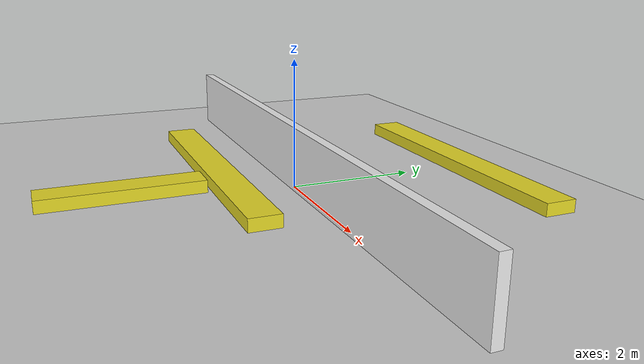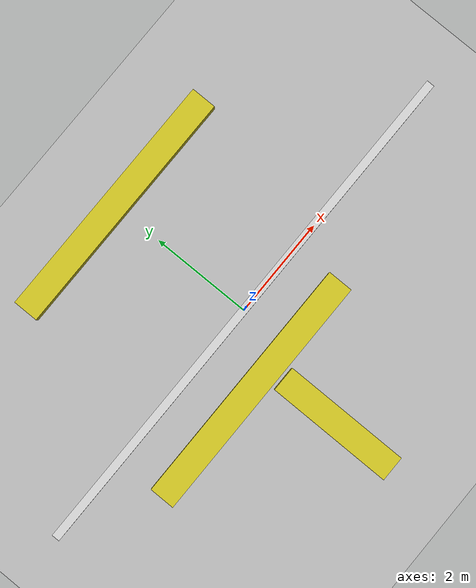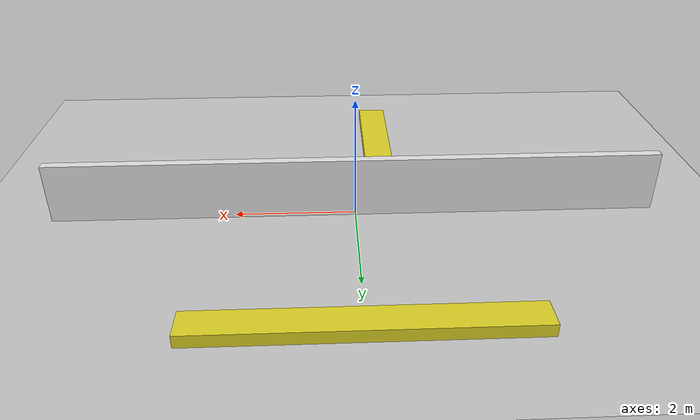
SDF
<sdf version="1.7">
 <world name="default">
  <light name="sun" type="directional">
   <pose>0 0 10 0 -0 0</pose>
   <diffuse>0.8 0.8 0.8 1</diffuse>
   <specular>0.2 0.2 0.2 1</specular>
   <attenuation>
    <range>1000</range>
    <constant>0.9</constant>
    <linear>0.01</linear>
    <quadratic>0.001</quadratic>
   </attenuation>
   <direction>-0.5 0.1 -0.9</direction>
   <spot><inner_angle>0</inner_angle><outer_angle>0</outer_angle><falloff>0</falloff></spot>
  </light>
  <model name="ground_plane">
   <static>1</static>
   <link name="link">
    <collision name="collision">
     <geometry><plane><normal>0 0 1</normal><size>100 100</size></plane></geometry>
     <surface><friction><ode><mu>100</mu><mu2>50</mu2></ode></friction></surface>
    </collision>
    <visual name="visual">
     <cast_shadows>0</cast_shadows>
     <geometry><plane><normal>0 0 1</normal><size>100 100</size></plane></geometry>
     <material>
      <script><uri>file://media/materials/scripts/gazebo.material</uri><name>Gazebo/Grey</name></script>
     </material>
    </visual>
   </link>
  </model>
  <gravity>0 0 -9.8</gravity>
  <magnetic_field>6e-06 2.3e-05 -4.2e-05</magnetic_field>
  <atmosphere type="adiabatic"/>
  <physics type="ode">
   <max_step_size>0.001</max_step_size>
   <real_time_factor>1</real_time_factor>
   <real_time_update_rate>1000</real_time_update_rate>
  </physics>
  <scene><ambient>0.4 0.4 0.4 1</ambient><background>0.7 0.7 0.7 1</background><shadows>1</shadows></scene>
  <audio><device>default</device></audio>
  <spherical_coordinates>
   <surface_model>EARTH_WGS84</surface_model>
   <latitude_deg>0</latitude_deg>
   <longitude_deg>0</longitude_deg>
   <elevation>0</elevation>
   <heading_deg>0</heading_deg>
  </spherical_coordinates>
  <model name="Arena_Wall">
   <link name="Wall_0">
    <collision name="Wall_0_Collision">
     <geometry><box><size>10 0.15 1</size></box></geometry>
     <pose>0 0 0.5 0 0 0</pose>
    </collision>
    <visual name="Wall_0_Visual">
     <pose>0 0 0.5 0 0 0</pose>
     <geometry><box><size>10 0.15 1</size></box></geometry>
     <material>
      <script><uri>file://media/materials/scripts/gazebo.material</uri><name>Gazebo/White</name></script>
      <ambient>1 1 1 1</ambient>
     </material>
     <meta><layer>0</layer></meta>
    </visual>
   </link>
   <link name="Wall_6">
    <visual name="Wall_6_Visual_0">
     <pose>0 0 0.5 0 -0 0</pose>
     <geometry><box><size>10 0.15 1</size></box></geometry>
     <material>
      <script><uri>file://media/materials/scripts/gazebo.material</uri><name>Gazebo/White</name></script>
      <ambient>1 1 1 1</ambient>
     </material>
     <meta><layer>0</layer></meta>
    </visual>
    <collision name="Wall_6_Collision_0">
     <geometry><box><size>10 0.15 1</size></box></geometry>
     <pose>0 0 0.5 0 0 0</pose>
    </collision>
   </link>
   <link name="Wall_7">
    <collision name="Wall_7_Collision">
     <geometry><box><size>10 0.15 1</size></box></geometry>
     <pose>0 0 0.5 0 0 0</pose>
    </collision>
    <visual name="Wall_7_Visual">
     <pose>0 0 0.5 0 0 0</pose>
     <geometry><box><size>10 0.15 1</size></box></geometry>
     <material>
      <script><uri>file://media/materials/scripts/gazebo.material</uri><name>Gazebo/White</name></script>
      <ambient>1 1 1 1</ambient>
     </material>
     <meta><layer>0</layer></meta>
    </visual>
   </link>
   <link name="Wall_8">
    <collision name="Wall_8_Collision">
     <geometry><box><size>10 0.15 1</size></box></geometry>
     <pose>0 0 0.5 0 0 0</pose>
    </collision>
    <visual name="Wall_8_Visual">
     <pose>0 0 0.5 0 0 0</pose>
     <geometry><box><size>10 0.15 1</size></box></geometry>
     <material>
      <script><uri>file://media/materials/scripts/gazebo.material</uri><name>Gazebo/White</name></script>
      <ambient>1 1 1 1</ambient>
     </material>
     <meta><layer>0</layer></meta>
    </visual>
   </link>
   <static>1</static>
  </model>
  <model name="kutija_1">
   <link name="link_2">
    <inertial>
     <mass>100</mass>
     <inertia><ixx>3.33333</ixx><ixy>0</ixy><ixz>0</ixz><iyy>1.66667</iyy><iyz>0</iyz><izz>4.33333</izz></inertia>
     <pose>0 0 0.1 0 -0 0</pose>
    </inertial>
    <visual name="visual">
     <geometry><box><size>2.5 0.5 0.2</size></box></geometry>
     <material>
      <lighting>1</lighting>
      <script><uri>file://media/materials/scripts/gazebo.material</uri><name>Gazebo/Yellow</name></script>
      <shader type="pixel"><normal_map>__default__</normal_map></shader>
      <ambient>1 1 0 1</ambient>
      <diffuse>1 1 0 1</diffuse>
      <specular>0.1 0.1 0 1</specular>
      <emissive>0.25 0.25 0 1</emissive>
     </material>
    </visual>
    <collision name="collision">
     <geometry><box><size>2.5 0.5 0.2</size></box></geometry>
     <surface>
      <friction>
       <ode><mu>1</mu><mu2>1</mu2><fdir1>0 0 0</fdir1><slip1>0</slip1><slip2>0</slip2></ode>
       <torsional>
        <coefficient>1</coefficient>
        <patch_radius>0</patch_radius>
        <surface_radius>0</surface_radius>
        <use_patch_radius>1</use_patch_radius>
        <ode><slip>0</slip></ode>
       </torsional>
      </friction>
      <bounce><restitution_coefficient>0</restitution_coefficient><threshold>1e+06</threshold></bounce>
      <contact>
       <collide_without_contact>0</collide_without_contact>
       <collide_without_contact_bitmask>1</collide_without_contact_bitmask>
       <collide_bitmask>1</collide_bitmask>
       <ode>
        <soft_cfm>0</soft_cfm>
        <soft_erp>0.2</soft_erp>
        <kp>1e+13</kp>
        <kd>1</kd>
        <max_vel>0.01</max_vel>
        <min_depth>0</min_depth>
       </ode>
       <bullet>
        <split_impulse>1</split_impulse>
        <split_impulse_penetration_threshold>-0.01</split_impulse_penetration_threshold>
        <soft_cfm>0</soft_cfm>
        <soft_erp>0.2</soft_erp>
        <kp>1e+13</kp>
        <kd>1</kd>
       </bullet>
      </contact>
     </surface>
    </collision>
   </link>
   <static>0</static>
   <pose>-0.5 -2.57 0.1 0 0 1.57</pose>
  </model>
  <model name="kutija_2">
   <link name="link_2">
    <inertial>
     <mass>100</mass>
     <inertia><ixx>3.33333</ixx><ixy>0</ixy><ixz>0</ixz><iyy>1.66667</iyy><iyz>0</iyz><izz>4.33333</izz></inertia>
     <pose>0 0 0.1 0 -0 0</pose>
    </inertial>
    <visual name="visual">
     <geometry><box><size>5 0.5 0.2</size></box></geometry>
     <material>
      <lighting>1</lighting>
      <script><uri>file://media/materials/scripts/gazebo.material</uri><name>Gazebo/Yellow</name></script>
      <shader type="pixel"><normal_map>__default__</normal_map></shader>
      <ambient>1 1 0 1</ambient>
      <diffuse>1 1 0 1</diffuse>
      <specular>0.1 0.1 0 1</specular>
      <emissive>0.25 0.25 0 1</emissive>
     </material>
    </visual>
    <collision name="collision">
     <geometry><box><size>5 0.5 0.2</size></box></geometry>
     <surface>
      <friction>
       <ode><mu>1</mu><mu2>1</mu2><fdir1>0 0 0</fdir1><slip1>0</slip1><slip2>0</slip2></ode>
       <torsional>
        <coefficient>1</coefficient>
        <patch_radius>0</patch_radius>
        <surface_radius>0</surface_radius>
        <use_patch_radius>1</use_patch_radius>
        <ode><slip>0</slip></ode>
       </torsional>
      </friction>
      <bounce><restitution_coefficient>0</restitution_coefficient><threshold>1e+06</threshold></bounce>
      <contact>
       <collide_without_contact>0</collide_without_contact>
       <collide_without_contact_bitmask>1</collide_without_contact_bitmask>
       <collide_bitmask>1</collide_bitmask>
       <ode>
        <soft_cfm>0</soft_cfm>
        <soft_erp>0.2</soft_erp>
        <kp>1e+13</kp>
        <kd>1</kd>
        <max_vel>0.01</max_vel>
        <min_depth>0</min_depth>
       </ode>
       <bullet>
        <split_impulse>1</split_impulse>
        <split_impulse_penetration_threshold>-0.01</split_impulse_penetration_threshold>
        <soft_cfm>0</soft_cfm>
        <soft_erp>0.2</soft_erp>
        <kp>1e+13</kp>
        <kd>1</kd>
       </bullet>
      </contact>
     </surface>
    </collision>
   </link>
   <static>0</static>
   <pose>-1 -1 0.1 0 0 0</pose>
  </model>
  <model name="kutija_3">
   <link name="link_2">
    <inertial>
     <mass>100</mass>
     <inertia><ixx>3.33333</ixx><ixy>0</ixy><ixz>0</ixz><iyy>1.66667</iyy><iyz>0</iyz><izz>4.33333</izz></inertia>
     <pose>0 0 0.1 0 -0 0</pose>
    </inertial>
    <visual name="visual">
     <geometry><box><size>5 0.5 0.2</size></box></geometry>
     <material>
      <lighting>1</lighting>
      <script><uri>file://media/materials/scripts/gazebo.material</uri><name>Gazebo/Yellow</name></script>
      <shader type="pixel"><normal_map>__default__</normal_map></shader>
      <ambient>1 1 0 1</ambient>
      <diffuse>1 1 0 1</diffuse>
      <specular>0.1 0.1 0 1</specular>
      <emissive>0.25 0.25 0 1</emissive>
     </material>
    </visual>
    <collision name="collision">
     <geometry><box><size>5 0.5 0.2</size></box></geometry>
     <surface>
      <friction>
       <ode><mu>1</mu><mu2>1</mu2><fdir1>0 0 0</fdir1><slip1>0</slip1><slip2>0</slip2></ode>
       <torsional>
        <coefficient>1</coefficient>
        <patch_radius>0</patch_radius>
        <surface_radius>0</surface_radius>
        <use_patch_radius>1</use_patch_radius>
        <ode><slip>0</slip></ode>
       </torsional>
      </friction>
      <bounce><restitution_coefficient>0</restitution_coefficient><threshold>1e+06</threshold></bounce>
      <contact>
       <collide_without_contact>0</collide_without_contact>
       <collide_without_contact_bitmask>1</collide_without_contact_bitmask>
       <collide_bitmask>1</collide_bitmask>
       <ode>
        <soft_cfm>0</soft_cfm>
        <soft_erp>0.2</soft_erp>
        <kp>1e+13</kp>
        <kd>1</kd>
        <max_vel>0.01</max_vel>
        <min_depth>0</min_depth>
       </ode>
       <bullet>
        <split_impulse>1</split_impulse>
        <split_impulse_penetration_threshold>-0.01</split_impulse_penetration_threshold>
        <soft_cfm>0</soft_cfm>
        <soft_erp>0.2</soft_erp>
        <kp>1e+13</kp>
        <kd>1</kd>
       </bullet>
      </contact>
     </surface>
    </collision>
   </link>
   <static>0</static>
   <pose>0 3 0.1 0 0 0</pose>
  </model>
 </world>
</sdf>
